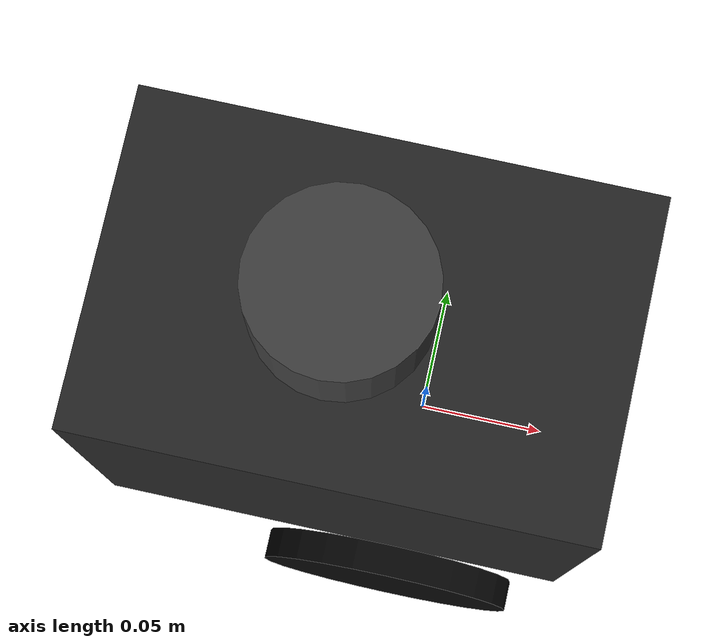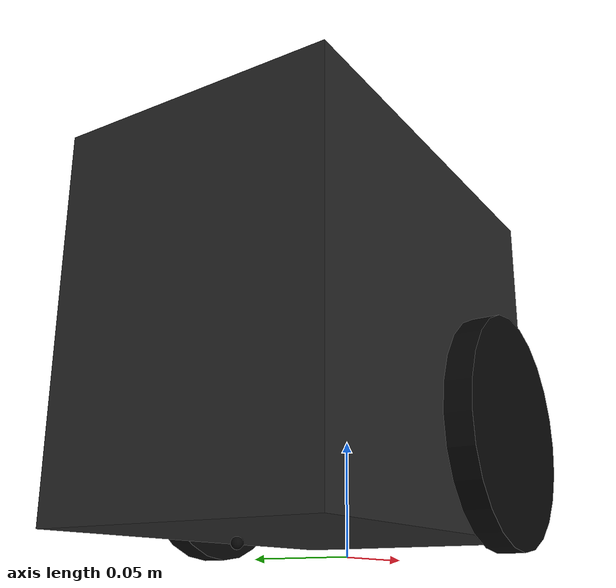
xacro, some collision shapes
<?xml version="1.0"?>
<robot name="custom_autorace" xmlns:xacro="http://ros.org/wiki/xacro">
  <xacro:arg name="use_mesh" default="true"/>
  <xacro:include filename="$(find custom_autorace_description)/urdf/robot_parameters.xacro"/>
  <xacro:include filename="$(find custom_autorace_description)/urdf/custom_autorace.gazebo.xacro"/>

  <material name="base_color"><color rgba="0.15 0.15 0.15 1"/></material>
  <material name="wheel_color"><color rgba="0.03 0.03 0.03 1"/></material>
  <material name="sensor_color"><color rgba="0.25 0.25 0.25 1"/></material>

  <link name="base_footprint"/>
  <joint name="base_joint" type="fixed">
    <parent link="base_footprint"/><child link="base_link"/>
    <origin xyz="0 0 ${wheel_radius}" rpy="0 0 0"/>
  </joint>

  <link name="base_link">
    <xacro:if value="$(arg use_mesh)">
      <visual>
        <origin xyz="${base_visual_mesh_x} ${base_visual_mesh_y} ${base_visual_mesh_z}" rpy="${base_visual_mesh_roll} ${base_visual_mesh_pitch} ${base_visual_mesh_yaw}"/>
        <geometry><mesh filename="package://custom_autorace_description/meshes/custom_autorace_fixed.stl" scale="${base_visual_mesh_scale} ${base_visual_mesh_scale} ${base_visual_mesh_scale}"/></geometry>
        <material name="base_color"/>
      </visual>
    </xacro:if>
    <xacro:unless value="$(arg use_mesh)">
      <visual><origin xyz="${base_x} ${base_y} ${base_z}"/><geometry><box size="${base_length} ${base_width} ${base_height}"/></geometry><material name="base_color"/></visual>
    </xacro:unless>
    <collision><origin xyz="${base_x} ${base_y} ${base_z}"/><geometry><box size="${base_length} ${base_width} ${base_height}"/></geometry></collision>
    <inertial><origin xyz="${base_com_x} ${base_com_y} ${base_com_z}"/><mass value="${base_mass}"/><inertia ixx="${base_ixx}" ixy="${base_ixy}" ixz="${base_ixz}" iyy="${base_iyy}" iyz="${base_iyz}" izz="${base_izz}"/></inertial>
  </link>

  <xacro:macro name="wheel" params="side y side_sign">
    <joint name="wheel_${side}_joint" type="continuous">
      <parent link="base_link"/><child link="wheel_${side}_link"/>
      <origin xyz="${wheel_x} ${y} 0" rpy="${-pi/2} 0 0"/><axis xyz="0 0 1"/>
    </joint>
    <link name="wheel_${side}_link">
      <visual><geometry><cylinder radius="${wheel_radius}" length="${wheel_width}"/></geometry><material name="wheel_color"/></visual>
      <collision><geometry><cylinder radius="${wheel_radius}" length="${wheel_width}"/></geometry></collision>
      <inertial>
        <origin xyz="${wheel_com_x} ${wheel_com_y} ${-side_sign*wheel_com_axial_offset}"/>
        <mass value="${wheel_mass}"/>
        <inertia ixx="${wheel_ixx}" ixy="${wheel_ixy}" ixz="${-side_sign*wheel_ixz_abs}" iyy="${wheel_iyy}" iyz="${-side_sign*wheel_iyz_abs}" izz="${wheel_izz}"/>
      </inertial>
    </link>
  </xacro:macro>
  <xacro:wheel side="left" y="${wheel_separation/2.0}" side_sign="1.0"/>
  <xacro:wheel side="right" y="${-wheel_separation/2.0}" side_sign="-1.0"/>

  <joint name="caster_back_joint" type="fixed"><parent link="base_link"/><child link="caster_back_link"/><origin xyz="${caster_x} ${caster_y} ${caster_z}"/></joint>
  <link name="caster_back_link">
    <visual><geometry><sphere radius="${caster_radius}"/></geometry><material name="wheel_color"/></visual>
    <collision><geometry><sphere radius="${caster_radius}"/></geometry></collision>
  </link>

  <joint name="imu_joint" type="fixed"><parent link="base_link"/><child link="imu_link"/><origin xyz="0 0 0"/></joint>
  <link name="imu_link"/>

  <joint name="scan_joint" type="fixed"><parent link="base_link"/><child link="base_scan"/><origin xyz="${lidar_x} ${lidar_y} ${lidar_z}" rpy="${lidar_roll} ${lidar_pitch} ${lidar_yaw}"/></joint>
  <link name="base_scan">
    <visual><origin xyz="0 0 ${lidar_body_center_z_from_origin}"/><geometry><cylinder radius="${lidar_radius}" length="${lidar_height}"/></geometry><material name="sensor_color"/></visual>
    <collision><origin xyz="0 0 ${lidar_body_center_z_from_origin}"/><geometry><cylinder radius="${lidar_radius}" length="${lidar_height}"/></geometry></collision>
  </link>

  <joint name="camera_joint" type="fixed"><parent link="base_link"/><child link="camera_frame"/><origin xyz="${camera_x} ${camera_y} ${camera_z}" rpy="${camera_roll} ${camera_pitch} ${camera_yaw}"/></joint>
  <link name="camera_frame">
    <visual><origin xyz="${camera_body_center_x_from_optical} ${camera_body_center_y_from_optical} ${camera_body_center_z_from_optical}"/><geometry><box size="${camera_body_x} ${camera_body_y} ${camera_body_z}"/></geometry><material name="sensor_color"/></visual>
    <collision><origin xyz="${camera_body_center_x_from_optical} ${camera_body_center_y_from_optical} ${camera_body_center_z_from_optical}"/><geometry><box size="${camera_body_x} ${camera_body_y} ${camera_body_z}"/></geometry></collision>
  </link>
  <!-- REP-103 optical frame: +z forward, +x right, +y down -->
  <joint name="camera_optical_joint" type="fixed"><parent link="camera_frame"/><child link="camera_optical_frame"/><origin xyz="0 0 0" rpy="${-pi/2} 0 ${-pi/2}"/></joint>
  <link name="camera_optical_frame"/>
</robot>

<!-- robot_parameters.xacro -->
<robot xmlns:xacro="http://ros.org/wiki/xacro">
  <!--
    사용자 입력 파일 (단위: m, kg, rad, Hz)
    실측 기구값은 반영 완료했으며, 센서 시뮬레이션값은 실물 시험 후 미세 조정할 수 있습니다.
    wheel_separation은 타이어 중심선 사이 거리입니다.
    센서 xyz/rpy는 base_link 원점 기준입니다(+x 전방, +y 좌측, +z 위).
  -->

  <!-- 바퀴/구동부 -->
  <xacro:property name="wheel_radius" value="0.04775"/>     <!-- 실측 지름 95.5 mm -->
  <xacro:property name="wheel_width" value="0.0113"/>       <!-- 실측 고무 폭 11.3 mm -->
  <xacro:property name="wheel_separation" value="0.1482"/> <!-- 159.5 - 11.3 = 148.2 mm -->
  <xacro:property name="wheel_x" value="0.0"/>              <!-- base_link가 바퀴 축 중앙이므로 0 -->
  <xacro:property name="wheel_mass" value="0.115"/>         <!-- 한쪽 전체 회전부 실측 115 g -->

  <!--
    왼쪽 회전부 Onshape 값을 COM 기준으로 평행축 변환한 뒤 wheel link 축으로 회전.
    wheel link는 joint의 -90 deg roll 때문에 local +z가 base_link +y(바퀴축)이다.
    오른쪽 회전부는 base_link x-z 평면에 대한 좌우 대칭으로 생성한다.
  -->
  <xacro:property name="wheel_com_x" value="0.000004"/>
  <xacro:property name="wheel_com_y" value="0.000004"/>
  <xacro:property name="wheel_com_axial_offset" value="0.001011"/>
  <xacro:property name="wheel_ixx" value="0.000077083887245"/>
  <xacro:property name="wheel_ixy" value="0.000000000001840"/>
  <xacro:property name="wheel_ixz_abs" value="0.000000007585060"/>
  <xacro:property name="wheel_iyy" value="0.000077083887245"/>
  <xacro:property name="wheel_iyz_abs" value="0.000000007581060"/>
  <xacro:property name="wheel_izz" value="0.000145643797320"/>

  <xacro:property name="base_mass" value="1.939969"/>
  <xacro:property name="base_com_x" value="-0.031713"/>
  <xacro:property name="base_com_y" value="0.000047"/>
  <xacro:property name="base_com_z" value="0.040927"/>
  <xacro:property name="base_ixx" value="0.005943510141947677"/>
  <xacro:property name="base_ixy" value="-0.000005376651134159"/>
  <xacro:property name="base_ixz" value="-0.000309920589483520"/>
  <xacro:property name="base_iyy" value="0.007039459728624638"/>
  <xacro:property name="base_iyz" value="-0.000009725224770639"/>
  <xacro:property name="base_izz" value="0.004035941015893918"/>
  <xacro:property name="robot_model_mass" value="${base_mass + 2.0*wheel_mass}"/>

  <!--
    base_link 기준 로봇 전체 수평 외곽. 바퀴 볼트, 카메라 등 돌출부 포함.
    비대칭 직사각형 footprint의 가장 먼 뒤쪽 모서리는 약 0.148645 m이다.
  -->
  <xacro:property name="footprint_front" value="0.067645"/>
  <xacro:property name="footprint_rear" value="0.118073"/>
  <xacro:property name="footprint_left" value="0.0903"/>
  <xacro:property name="footprint_right" value="0.0903"/>
  <xacro:property name="robot_radius" value="0.149"/>       <!-- 보수적으로 mm 단위 올림 -->

  <!-- 차체: 실측한 여섯 방향 외곽을 감싸는 보수적인 단일 box collision -->
  <xacro:property name="base_length" value="0.185718"/>     <!-- 앞 67.645 + 뒤 118.073 mm -->
  <xacro:property name="base_width" value="0.1222"/>        <!-- 좌 61.1 + 우 61.1 mm -->
  <xacro:property name="base_height" value="0.159081"/>     <!-- 위 118.531 + 아래 40.55 mm -->
  <xacro:property name="base_x" value="-0.025214"/>
  <xacro:property name="base_y" value="0.0"/>               <!-- 좌우 대칭 -->
  <xacro:property name="base_z" value="0.0389905"/>         <!-- (위 118.531 - 아래 40.55) / 2 -->

  <xacro:property name="base_visual_mesh_x" value="-0.186"/>
  <xacro:property name="base_visual_mesh_y" value="0.165482"/>
  <xacro:property name="base_visual_mesh_z" value="-0.058854"/>
  <xacro:property name="base_visual_mesh_roll" value="0.0"/>
  <xacro:property name="base_visual_mesh_pitch" value="0.0"/>
  <xacro:property name="base_visual_mesh_yaw" value="${pi/2.0}"/>
  <xacro:property name="base_visual_mesh_scale" value="1.0"/>

  <!-- 후방 캐스터 접촉부 -->
  <xacro:property name="caster_x" value="-0.079073"/>       <!-- 바퀴축 중심선에서 뒤로 79.073 mm -->
  <xacro:property name="caster_y" value="0.0"/>             <!-- 로봇 좌우 정중앙 -->
  <xacro:property name="caster_radius" value="0.00238125"/> <!-- 실측 볼 지름 4.7625 mm -->
  <!-- base_link는 바퀴축 높이이며, 볼의 아랫점이 바닥에 닿도록 중심 z 계산 -->
  <xacro:property name="caster_z" value="${-wheel_radius + caster_radius}"/>

  <!-- LiDAR 장착 위치/자세 및 외형 -->
  <!-- 밑면 중심 (-33.073, 0, 96.9) mm + 원점 높이 47 mm -->
  <xacro:property name="lidar_x" value="-0.033073"/>
  <xacro:property name="lidar_y" value="0.0"/>
  <xacro:property name="lidar_z" value="0.1439"/>
  <!-- M12 커넥터 후방, 수평 정방향: Mid-360 XYZ와 base_link XYZ가 일치 -->
  <xacro:property name="lidar_roll" value="0.0"/>
  <xacro:property name="lidar_pitch" value="0.0"/>
  <xacro:property name="lidar_yaw" value="0.0"/>
  <!-- Livox Mid-360: 외형은 65 x 65 x 60 mm, 원통 collision으로 근사 -->
  <xacro:property name="lidar_radius" value="0.0325"/>
  <xacro:property name="lidar_height" value="0.060"/>
  <!-- 점군 원점은 밑면에서 47 mm, 본체 중심은 밑면에서 30 mm -->
  <xacro:property name="lidar_body_center_z_from_origin" value="-0.017"/>

  <!--
    D405 장착 기준점: 뒤쪽 M3 두 구멍의 정중앙(뒤쪽 외장면).
    사용자가 한쪽 M3 구멍에서 측정했지만 정상 장착에서는 두 구멍의 x/z가 같고,
    카메라 본체가 로봇 중앙에 있으므로 정중앙의 y는 0으로 둔다.
  -->
  <xacro:property name="camera_mount_x" value="0.039665"/>
  <xacro:property name="camera_mount_y" value="0.0"/>
  <xacro:property name="camera_mount_z" value="0.089248"/>
  <xacro:property name="camera_roll" value="0.0"/>
  <xacro:property name="camera_pitch" value="${17.0*pi/180.0}"/> <!-- 아래보기 17 deg -->
  <xacro:property name="camera_yaw" value="0.0"/>

  <!-- M3 정중앙에서 left-imager 깊이 원점까지의 D405 본체 좌표 오프셋 -->
  <xacro:property name="camera_optical_offset_x" value="0.0192"/> <!-- 후면에서 전면 유리 안쪽 깊이 원점까지 -->
  <xacro:property name="camera_optical_offset_y" value="0.009"/>  <!-- 본체 중앙에서 카메라 왼쪽 -->
  <xacro:property name="camera_optical_offset_z" value="0.0"/>

  <!-- Rz(yaw) * Ry(pitch) * Rx(roll)로 장착 오프셋을 base_link 좌표로 변환 -->
  <xacro:property name="camera_x" value="${camera_mount_x + cos(camera_yaw)*cos(camera_pitch)*camera_optical_offset_x + (cos(camera_yaw)*sin(camera_pitch)*sin(camera_roll)-sin(camera_yaw)*cos(camera_roll))*camera_optical_offset_y + (cos(camera_yaw)*sin(camera_pitch)*cos(camera_roll)+sin(camera_yaw)*sin(camera_roll))*camera_optical_offset_z}"/>
  <xacro:property name="camera_y" value="${camera_mount_y + sin(camera_yaw)*cos(camera_pitch)*camera_optical_offset_x + (sin(camera_yaw)*sin(camera_pitch)*sin(camera_roll)+cos(camera_yaw)*cos(camera_roll))*camera_optical_offset_y + (sin(camera_yaw)*sin(camera_pitch)*cos(camera_roll)-cos(camera_yaw)*sin(camera_roll))*camera_optical_offset_z}"/>
  <xacro:property name="camera_z" value="${camera_mount_z - sin(camera_pitch)*camera_optical_offset_x + cos(camera_pitch)*sin(camera_roll)*camera_optical_offset_y + cos(camera_pitch)*cos(camera_roll)*camera_optical_offset_z}"/>

  <!-- RealSense D405: x=깊이, y=폭, z=높이 -->
  <xacro:property name="camera_body_x" value="0.023"/>
  <xacro:property name="camera_body_y" value="0.042"/>
  <xacro:property name="camera_body_z" value="0.042"/>
  <!-- camera_frame은 광학 원점이므로 본체 중심을 광학 원점 기준으로 되돌린다. -->
  <xacro:property name="camera_body_center_x_from_optical" value="${camera_body_x/2.0-camera_optical_offset_x}"/>
  <xacro:property name="camera_body_center_y_from_optical" value="${-camera_optical_offset_y}"/>
  <xacro:property name="camera_body_center_z_from_optical" value="0.0"/>

  <!-- Gazebo LiDAR 사양 -->
  <!-- 실제 Mid-360 비반복 점군이 아닌 /scan_mid360_raw용 Gazebo 2D 근사 -->
  <xacro:property name="lidar_samples" value="360"/>
  <xacro:property name="lidar_min_angle" value="-${pi}"/>
  <xacro:property name="lidar_max_angle" value="${pi}"/>
  <xacro:property name="lidar_min_range" value="0.10"/>
  <xacro:property name="lidar_max_range" value="40.0"/>
  <xacro:property name="lidar_range_resolution" value="0.02"/>
  <xacro:property name="lidar_update_rate" value="10.0"/>

  <!-- Gazebo IMU의 1-sigma 백색잡음. 플러그인은 이 값의 제곱을 공분산으로 발행한다. -->
  <xacro:property name="imu_gaussian_noise" value="0.002"/> <!-- rad/s 및 센서 출력용 초기값 -->

  <!-- Gazebo 카메라 사양: 수평 FOV는 rad -->
  <xacro:property name="camera_horizontal_fov" value="1.5184364"/> <!-- D405 RGB 약 87 deg -->
  <!-- Docker/Gazebo에서 안정적으로 30 Hz를 유지하기 위한 시뮬레이션 해상도 -->
  <xacro:property name="camera_width" value="640"/>
  <xacro:property name="camera_height" value="480"/>
  <xacro:property name="camera_update_rate" value="30.0"/>

</robot>
